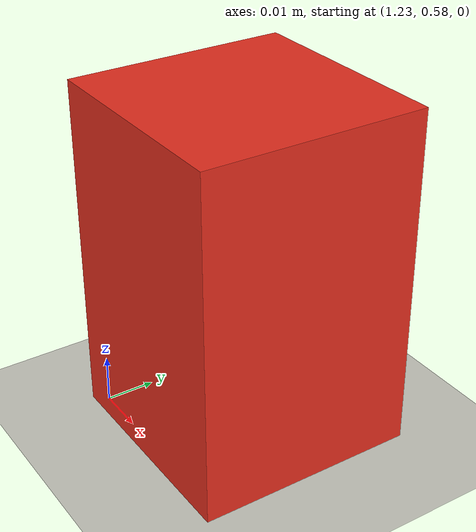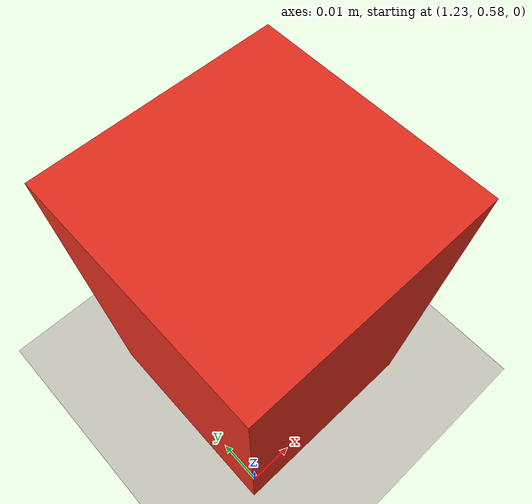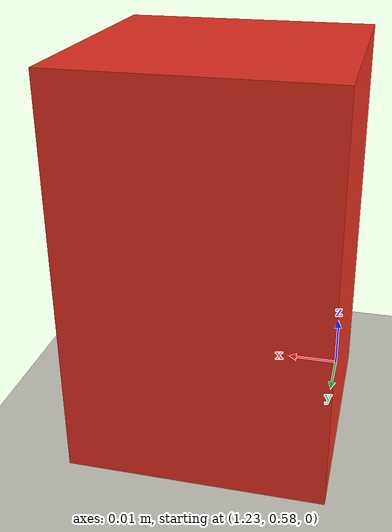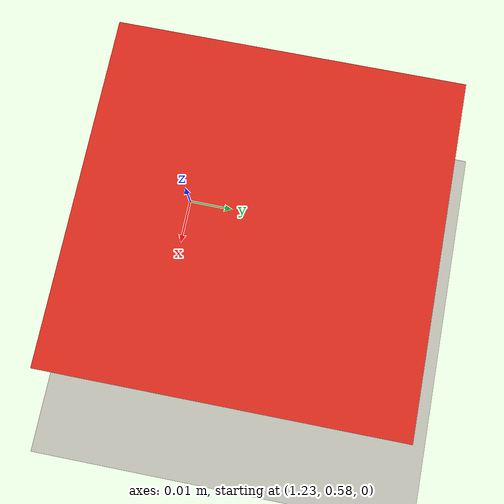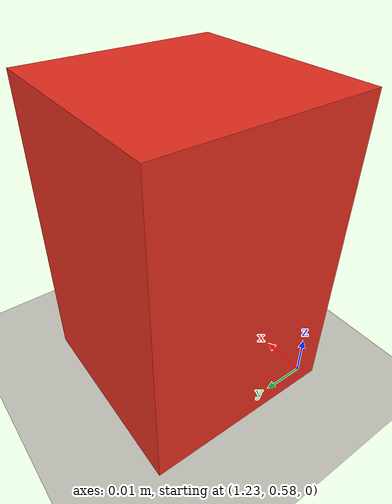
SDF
<?xml version="1.0" ?>
<sdf version="1.10">
  <world name="omx_mobile_grasp_lab">
    <physics name="1ms" type="ignored">
      <max_step_size>0.002</max_step_size>
      <real_time_factor>1.0</real_time_factor>
    </physics>

    <plugin filename="gz-sim-physics-system" name="gz::sim::systems::Physics"/>
    <plugin filename="gz-sim-user-commands-system" name="gz::sim::systems::UserCommands"/>
    <plugin filename="gz-sim-scene-broadcaster-system" name="gz::sim::systems::SceneBroadcaster"/>
    <plugin filename="gz-sim-contact-system" name="gz::sim::systems::Contact"/>

    <scene>
      <ambient>0.45 0.45 0.45 1</ambient>
      <background>0.70 0.78 0.86 1</background>
      <grid>true</grid>
    </scene>

    <gui fullscreen="0">
      <plugin name="3D View" filename="GzScene3D">
        <gz-gui>
          <title>3D View</title>
          <property type="bool" key="showTitleBar">0</property>
          <property type="string" key="state">docked</property>
        </gz-gui>
        <engine>ogre2</engine>
        <scene>scene</scene>
        <ambient_light>0.45 0.45 0.45</ambient_light>
        <background_color>0.70 0.78 0.86</background_color>
        <camera_pose>-1.25 -1.45 1.05 0 0.70 0.78</camera_pose>
      </plugin>
    </gui>

    <light name="sun" type="directional">
      <cast_shadows>true</cast_shadows>
      <pose>0 0 4 0 0 0</pose>
      <diffuse>0.85 0.85 0.85 1</diffuse>
      <specular>0.2 0.2 0.2 1</specular>
      <direction>-0.4 0.2 -1</direction>
    </light>

    <model name="ground_plane">
      <static>true</static>
      <link name="link">
        <collision name="collision">
          <geometry>
            <plane>
              <normal>0 0 1</normal>
              <size>6 6</size>
            </plane>
          </geometry>
        </collision>
        <visual name="visual">
          <geometry>
            <plane>
              <normal>0 0 1</normal>
              <size>6 6</size>
            </plane>
          </geometry>
          <material>
            <diffuse>0.78 0.78 0.74 1</diffuse>
          </material>
        </visual>
      </link>
    </model>

    <model name="mobile_base_marker">
      <static>false</static>
      <pose>0 0 0.025 0 0 0</pose>
      <link name="chassis">
        <inertial>
          <mass>2.0</mass>
          <inertia>
            <ixx>0.02</ixx>
            <iyy>0.02</iyy>
            <izz>0.02</izz>
          </inertia>
        </inertial>
        <collision name="collision">
          <geometry>
            <box>
              <size>0.38 0.28 0.05</size>
            </box>
          </geometry>
        </collision>
        <visual name="visual">
          <geometry>
            <box>
              <size>0.38 0.28 0.05</size>
            </box>
          </geometry>
          <material>
            <diffuse>0.10 0.16 0.22 1</diffuse>
          </material>
        </visual>
      </link>
    </model>

    <model name="grasp_cube">
      <static>false</static>
      <pose>1.25 0.60 0.035 0 0 0</pose>
      <link name="link">
        <inertial>
          <mass>0.035</mass>
          <inertia>
            <ixx>0.00001</ixx>
            <iyy>0.00001</iyy>
            <izz>0.00001</izz>
          </inertia>
        </inertial>
        <collision name="collision">
          <geometry>
            <box>
              <size>0.045 0.045 0.070</size>
            </box>
          </geometry>
          <surface>
            <friction>
              <ode>
                <mu>1.8</mu>
                <mu2>1.8</mu2>
              </ode>
            </friction>
          </surface>
        </collision>
        <visual name="visual">
          <geometry>
            <box>
              <size>0.045 0.045 0.070</size>
            </box>
          </geometry>
          <material>
            <diffuse>0.9 0.18 0.12 1</diffuse>
          </material>
        </visual>
      </link>
    </model>
  </world>
</sdf>
